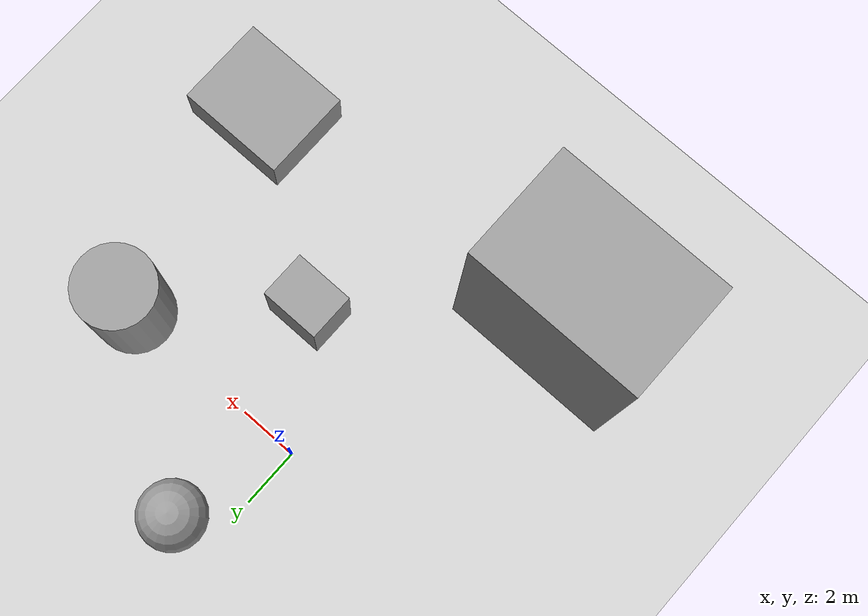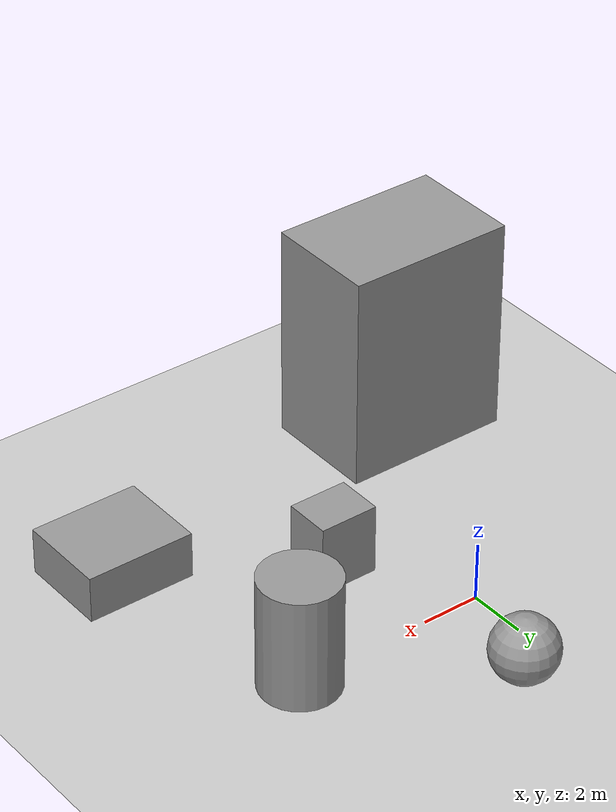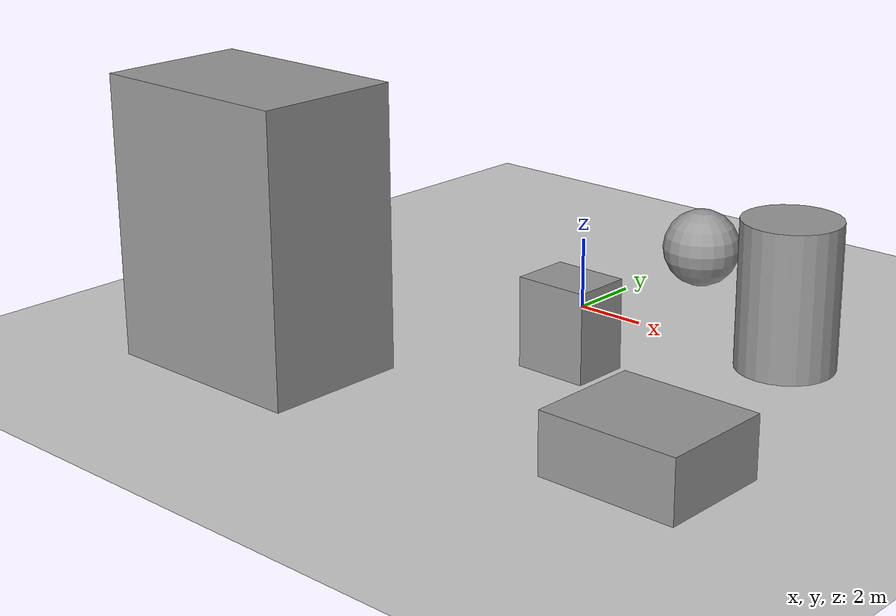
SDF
<sdf version="1.6">
 <world name="default">
  <light name="sun" type="directional">
   <pose>0 0 10 0 -0 0</pose>
   <diffuse>0.8 0.8 0.8 1</diffuse>
   <specular>0.2 0.2 0.2 1</specular>
   <attenuation>
    <range>1000</range>
    <constant>0.9</constant>
    <linear>0.01</linear>
    <quadratic>0.001</quadratic>
   </attenuation>
   <direction>-0.5 0.1 -0.9</direction>
  </light>
  <model name="ground_plane">
   <static>1</static>
   <link name="link">
    <collision name="collision">
     <geometry><plane><normal>0 0 1</normal><size>100 100</size></plane></geometry>
     <surface>
      <contact><collide_bitmask>65535</collide_bitmask></contact>
      <friction><ode><mu>100</mu><mu2>50</mu2></ode></friction>
     </surface>
    </collision>
    <visual name="visual">
     <cast_shadows>0</cast_shadows>
     <geometry><plane><normal>0 0 1</normal><size>100 100</size></plane></geometry>
     <material>
      <script><uri>file://media/materials/scripts/gazebo.material</uri><name>Gazebo/Grey</name></script>
     </material>
    </visual>
   </link>
  </model>
  <gravity>0 0 -9.8</gravity>
  <magnetic_field>6e-06 2.3e-05 -4.2e-05</magnetic_field>
  <atmosphere type="adiabatic"/>
  <physics name="default_physics" default="0" type="ode">
   <max_step_size>0.001</max_step_size>
   <real_time_factor>1</real_time_factor>
   <real_time_update_rate>1000</real_time_update_rate>
  </physics>
  <scene><ambient>0.4 0.4 0.4 1</ambient><background>0.7 0.7 0.7 1</background><shadows>1</shadows></scene>
  <spherical_coordinates>
   <surface_model>EARTH_WGS84</surface_model>
   <latitude_deg>0</latitude_deg>
   <longitude_deg>0</longitude_deg>
   <elevation>0</elevation>
   <heading_deg>0</heading_deg>
  </spherical_coordinates>
  <model name="unit_box">
   <pose>-3.64911 -8.82262 3.76432 -0 -0 -0.000845</pose>
   <link name="link">
    <inertial>
     <mass>1</mass>
     <inertia>
      <ixx>0.166667</ixx>
      <ixy>0</ixy>
      <ixz>0</ixz>
      <iyy>0.166667</iyy>
      <iyz>0</iyz>
      <izz>0.166667</izz>
     </inertia>
    </inertial>
    <collision name="collision"><geometry><box><size>5.88443 3.96792 7.52864</size></box></geometry></collision>
    <visual name="visual">
     <geometry><box><size>5.88443 3.96792 7.52864</size></box></geometry>
     <material>
      <script><name>Gazebo/Grey</name><uri>file://media/materials/scripts/gazebo.material</uri></script>
     </material>
    </visual>
   </link>
  </model>
  <model name="unit_box_0">
   <pose>8.14005 -7.70277 0.806254 0 0.000176 -3e-05</pose>
   <link name="link">
    <inertial>
     <mass>1</mass>
     <inertia>
      <ixx>0.166667</ixx>
      <ixy>0</ixy>
      <ixz>0</ixz>
      <iyy>0.166667</iyy>
      <iyz>0</iyz>
      <izz>0.166667</izz>
     </inertia>
    </inertial>
    <collision name="collision"><geometry><box><size>3.76904 3.1196 1.61317</size></box></geometry></collision>
    <visual name="visual">
     <geometry><box><size>3.76904 3.1196 1.61317</size></box></geometry>
     <material>
      <script><name>Gazebo/Grey</name><uri>file://media/materials/scripts/gazebo.material</uri></script>
     </material>
    </visual>
   </link>
  </model>
  <model name="unit_cylinder">
   <pose>6.75414 -0.018383 1.98976 0 -0 0.000912</pose>
   <link name="link">
    <inertial>
     <mass>1</mass>
     <inertia><ixx>0.145833</ixx><ixy>0</ixy><ixz>0</ixz><iyy>0.145833</iyy><iyz>0</iyz><izz>0.125</izz></inertia>
    </inertial>
    <collision name="collision">
     <geometry><cylinder><radius>1.32805</radius><length>3.97954</length></cylinder></geometry>
    </collision>
    <visual name="visual">
     <geometry><cylinder><radius>1.32805</radius><length>3.97954</length></cylinder></geometry>
     <material>
      <script><name>Gazebo/Grey</name><uri>file://media/materials/scripts/gazebo.material</uri></script>
     </material>
    </visual>
   </link>
  </model>
  <model name="unit_sphere">
   <pose>1.34435 3.79641 1.12482 0 -0 0</pose>
   <link name="link">
    <inertial>
     <mass>1</mass>
     <inertia><ixx>0.1</ixx><ixy>0</ixy><ixz>0</ixz><iyy>0.1</iyy><iyz>0</iyz><izz>0.1</izz></inertia>
    </inertial>
    <collision name="collision"><geometry><sphere><radius>1.12482</radius></sphere></geometry></collision>
    <visual name="visual">
     <geometry><sphere><radius>1.12482</radius></sphere></geometry>
     <material>
      <script><name>Gazebo/Grey</name><uri>file://media/materials/scripts/gazebo.material</uri></script>
     </material>
    </visual>
   </link>
  </model>
  <model name="unit_box_1">
   <pose>2.62931 -3.75228 1.21752 -0 1e-06 -2e-06</pose>
   <link name="link">
    <inertial>
     <mass>1</mass>
     <inertia>
      <ixx>0.166667</ixx>
      <ixy>0</ixy>
      <ixz>0</ixz>
      <iyy>0.166667</iyy>
      <iyz>0</iyz>
      <izz>0.166667</izz>
     </inertia>
    </inertial>
    <collision name="collision"><geometry><box><size>2.03718 1.60604 2.43504</size></box></geometry></collision>
    <visual name="visual">
     <geometry><box><size>2.03718 1.60604 2.43504</size></box></geometry>
     <material>
      <script><name>Gazebo/Grey</name><uri>file://media/materials/scripts/gazebo.material</uri></script>
     </material>
    </visual>
   </link>
  </model>
 </world>
</sdf>
